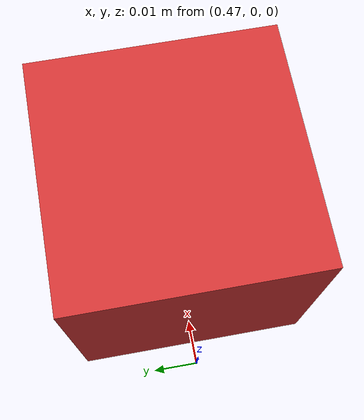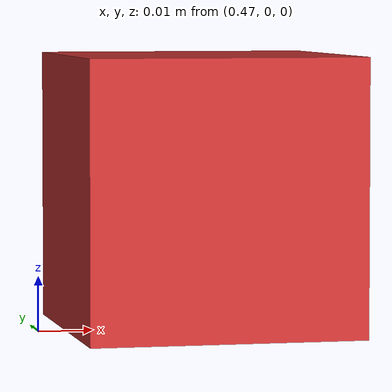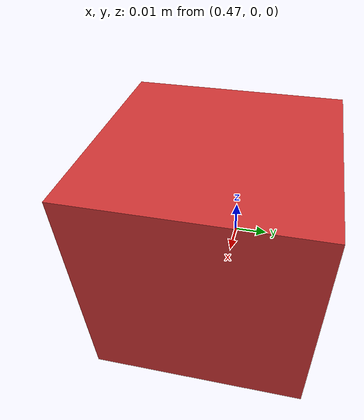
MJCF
<mujoco>
  <worldbody>
    <body name="push_box" pos="0.5 0.0 0.025">
      <freejoint/>
      <geom name="push_box_geom" type="box" size="0.025 0.025 0.025"
            mass="0.1" friction="0.5 0.005 0.0001"
            rgba="0.8 0.2 0.2 1"/>
    </body>
    <!-- Multi-angle cameras shared by planar_push/push_to_goal -->
    <camera name="overview" pos="0.0 -1.2 1.4" euler="55 0 0"/>
    <camera name="side" pos="-1.4 0.0 0.8" euler="0 -75 0"/>
    <camera name="top_down" pos="0.0 0.0 2.2" euler="90 0 0"/>
    <!-- Wrist camera approximates TCP view (static until MJCF body-attachment upgrade). -->
    <camera name="wrist" mode="fixed" pos="0.5 0.0 0.35" euler="90 0 180"/>
  </worldbody>
</mujoco>
